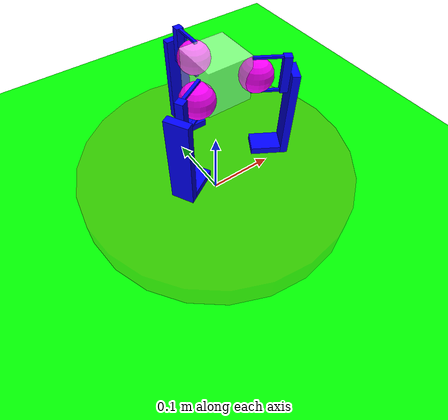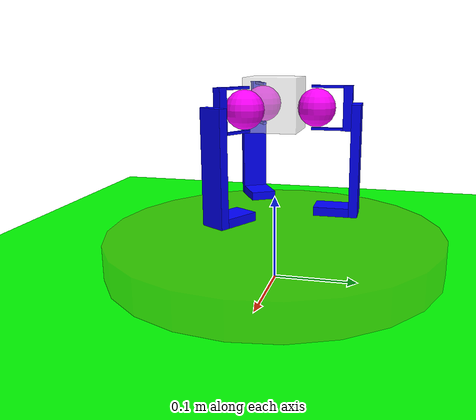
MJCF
<?xml version="1.0"?>
<mujoco>
  <option timestep="0.0002" cone="elliptic" collision="all" solver="Newton" gravity="0 0 -9.8"/>
  <visual>
    <scale framelength="0.5" framewidth="0.01"/>
  </visual>
  <worldbody>
    <body name="robot" pos="0 0 0.04">
      <geom mass="1.0" pos="0 0 0" rgba="1 0 0 0.1" size="0.2 0.02" type="cylinder"/>
      <camera euler="0 0 0" fovy="40" name="rgbd" pos="0 0 1.5"></camera>
      <body name="l1_front" pos="0 0.068 0.05"  quat="-0.707 0 0 -0.707">
        <joint axis="0 1 0" damping="0.1" name="r1_front" pos="-0.02 0 -0.005" type="hinge"/>
        <geom mass = "0.01" size="0.02 0.015 0.005" rgba="0 0 1 1" type="box"/>
        <body name="l11_front" pos="0.025 0.0 0.05825" >
          <geom mass = "0.01" size="0.005 0.015 0.06325" rgba="0 0 1 1" type="box"/>
          <body name="l2_front" pos="-0.01 0.0 0.05825" >
            <joint axis="1 0 0" damping="0.1" name="r2_front" pos="0 0 0" type="hinge"/>
            <geom mass = "0.01" size="0.005 0.005 0.025" rgba="0 0 1 1" type="box"/>
            <body name="l3_front" pos="-0.035 0 0">
              <joint axis="0 0 1" damping="0.1" name="r3_front" pos="0 0 0" type="hinge"/>
              <geom name="l3_front" mass = "0.01" size="0.0215" rgba="1 0 1 1" type="sphere"/>
            </body>
            <body name="l31_front" pos="-0.023 0.0 -0.0235">
              <geom mass = "0.005" size="0.018 0.002 0.0015" rgba="0 0 1 1" type="box"/>
            </body>
            <body name="l32_front" pos="-0.023 0.0 0.0235">
              <geom mass = "0.005" size="0.018 0.002 0.0015" rgba="0 0 1 1" type="box"/>
            </body>
          </body>
        </body>
      </body>
      <body name="l1_left" pos="-0.05889 -0.034 0.05"  quat="-0.259 0 0 0.966">
        <joint axis="0 1 0" damping="0.1" name="r1_left" pos="-0.02 0 -0.005" type="hinge"/>
        <geom mass = "0.01" size="0.02 0.015 0.005" rgba="0 0 1 1" type="box"/>
        <body name="l11_left" pos="0.025 0.0 0.05825" >
          <geom mass = "0.01" size="0.005 0.015 0.06325" rgba="0 0 1 1" type="box"/>
          <body name="l2_left" pos="-0.01 0.0 0.05825" >
            <joint axis="1 0 0" damping="0.1" name="r2_left" pos="0 0 0" type="hinge"/>
            <geom mass = "0.01" size="0.005 0.005 0.025" rgba="0 0 1 1" type="box"/>
            <body name="l3_left" pos="-0.035 0 0">
              <joint axis="0 0 1" damping="0.1" name="r3_left" pos="0 0 0" type="hinge"/>
              <geom name="l3_left" mass = "0.01" size="0.0215" rgba="1 0 1 1" type="sphere"/>
            </body>
            <body name="l31_left" pos="-0.023 0.0 -0.0235">
              <geom mass = "0.005" size="0.018 0.002 0.0015" rgba="0 0 1 1" type="box"/>
            </body>
            <body name="l32_left" pos="-0.023 0.0 0.0235">
              <geom mass = "0.005" size="0.018 0.002 0.0015" rgba="0 0 1 1" type="box"/>
            </body>
          </body>
        </body>
      </body>
      <body name="l1_right" pos="0.05889 -0.034 0.05"  quat="-0.966 0 0 0.259">
        <joint axis="0 1 0" damping="0.1" name="r1_right" pos="-0.02 0 -0.005" type="hinge"/>
        <geom mass = "0.01" size="0.02 0.015 0.005" rgba="0 0 1 1" type="box"/>
        <body name="l11_right" pos="0.025 0.0 0.05825" >
          <geom mass = "0.01" size="0.005 0.015 0.06325" rgba="0 0 1 1" type="box"/>
          <body name="l2_right" pos="-0.01 0.0 0.05825" >
            <joint axis="1 0 0" damping="0.1" name="r2_right" pos="0 0 0" type="hinge"/>
            <geom mass = "0.01" size="0.005 0.005 0.025" rgba="0 0 1 1" type="box"/>
            <body name="l3_right" pos="-0.035 0 0">
              <joint axis="0 0 1" damping="0.1" name="r3_right" pos="0 0 0" type="hinge"/>
              <geom name="l3_right" mass = "0.01" size="0.0215" rgba="1 0 1 1" type="sphere"/>
            </body>
            <body name="l31_right" pos="-0.023 0.0 -0.0235">
              <geom mass = "0.005" size="0.018 0.002 0.0015" rgba="0 0 1 1" type="box"/>
            </body>
            <body name="l32_right" pos="-0.023 0.0 0.0235">
              <geom mass = "0.005" size="0.018 0.002 0.0015" rgba="0 0 1 1" type="box"/>
            </body>
          </body>
        </body>
      </body>
    </body>
    <body name="floor" pos="0 0 0">
       <geom size="1.0 1.0 0.02" rgba="0 1 0 1" type="box"/>
    </body>
    <body name = "cube" pos = "0. 0. 0.21" quat = "1.0 0.0 0.0 0.0">
        <joint damping = "0" name = "cube" pos = "0 0 0" type = "free"/>
        <geom name = "cube" density = "150" size = "0.03 0.03 0.03" rgba = "1 1 1 0.5" type = "box"/>
    </body>

  </worldbody>

  <default>
     <geom contype="1" conaffinity="1" condim="3" solref="0.001 1.5" solimp="0.95 0.95 .01"/>
  </default>

  <sensor>
     <jointpos name="j1" joint="r1_front"/>
     <jointpos name="j2" joint="r2_front"/>
     <jointpos name="j3" joint="r3_front"/>
     <jointpos name="j4" joint="r1_left"/>
     <jointpos name="j5" joint="r2_left"/>
     <jointpos name="j6" joint="r3_left"/>
     <jointpos name="j7" joint="r1_right"/>
     <jointpos name="j8" joint="r2_right"/>
     <jointpos name="j9" joint="r3_right"/>
     <framepos name="boxpos" objtype="body" objname="cube"/>
     <framequat name="boxorient" objtype="body" objname="cube"/>
  </sensor>

  <actuator>
    <position name="motor1" kp="0.75" forcelimited="true" forcerange="-0.5 2" gear="3" joint="r1_front"/>
    <position name="motor4" kp="0.75" forcelimited="true" forcerange="-0.5 2" gear="3" joint="r1_left"/>
    <position name="motor7" kp="0.75" forcelimited="true" forcerange="-0.5 2" gear="3" joint="r1_right"/>
    <position name="motor2" ctrllimited="true" ctrlrange="-15.7 15.7" gear="10" joint="r2_front"/>
    <position name="motor5" ctrllimited="true" ctrlrange="-15.7 15.7" gear="10" joint="r2_left"/>
    <position name="motor8" ctrllimited="true" ctrlrange="-15.7 15.7" gear="10" joint="r2_right"/>
    <position name="motor3" ctrllimited="false" gear="1" joint="r3_front"/>
    <position name="motor6" ctrllimited="false" gear="1" joint="r3_left"/>
    <position name="motor9" ctrllimited="false" gear="1" joint="r3_right"/>
  </actuator>
</mujoco>
